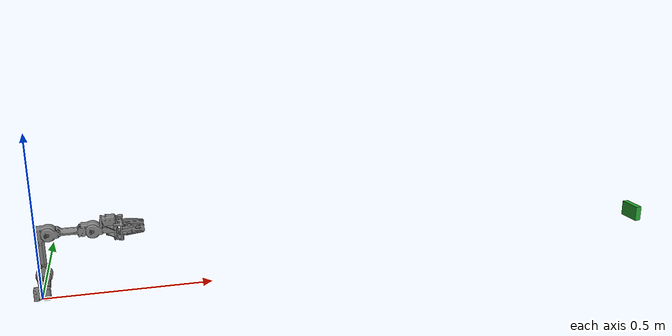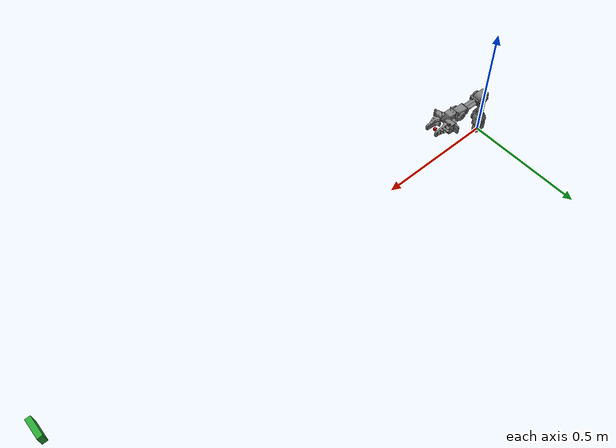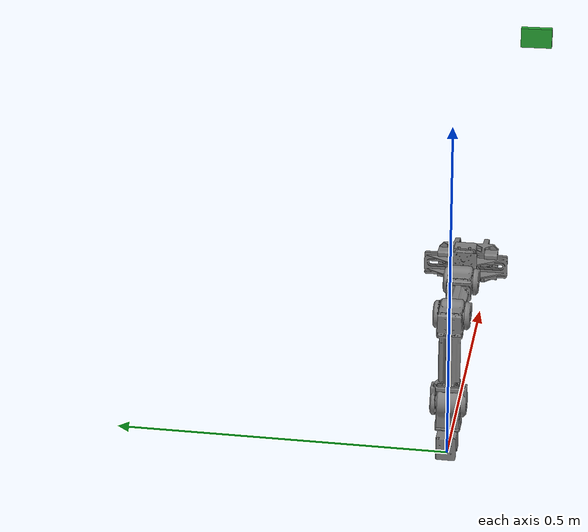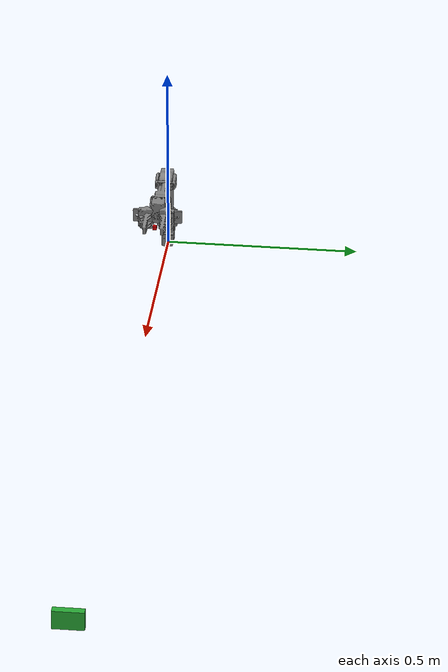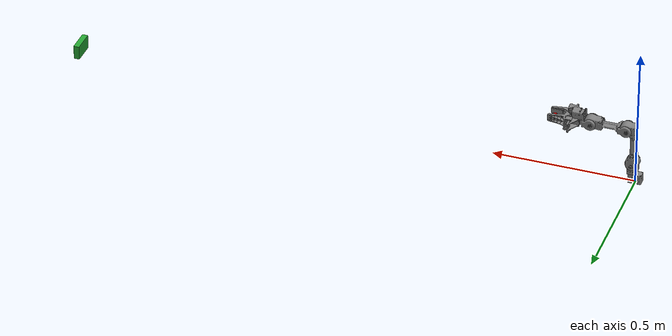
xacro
<?xml version="1.0" ?>
<robot xmlns:xacro="http://www.ros.org/wiki/xacro" name="open_manipulator">

  <xacro:include filename="$(find kair_algorithms)/urdf/camera.urdf.xacro"/>
    <material name="black">
      <color rgba="0.0 0.0 0.0 1.0"/>
    </material>
    <material name="white">
      <color rgba="1.0 1.0 1.0 1.0"/>
    </material>
    <material name="red">
      <color rgba="0.8 0.0 0.0 1.0"/>
    </material>
    <material name="blue">
      <color rgba="0.0 0.0 0.8 1.0"/>
    </material>
    <material name="green">
      <color rgba="0.0 0.8 0.0 1.0"/>
    </material>
    <material name="grey">
      <color rgba="0.5 0.5 0.5 1.0"/>
    </material>
    <material name="orange">
      <color rgba="1.0 0.423529411765 0.0392156862745 1.0"/>
    </material>
    <material name="brown">
      <color rgba="0.870588235294 0.811764705882 0.764705882353 1.0"/>
    </material>
    <!-- World -->
    <link name="world">
    </link>
    <!-- World fixed joint-->
    <joint name="world_fixed" type="fixed">
      <origin rpy="0 0 0" xyz="0 0 0"/>
      <parent link="world"/>
      <child link="link1"/>
    </joint>
    <!-- Link 1 -->
    <link name="link1">
      <visual>
        <origin rpy="0 0 0" xyz="0 0 0"/>
        <geometry>
          <mesh filename="package://open_manipulator_description/meshes/chain_link1.stl" scale="0.001 0.001 0.001"/>
        </geometry>
        <material name="grey"/>
      </visual>
      <collision>
        <origin rpy="0 0 0" xyz="0 0 0"/>
        <geometry>
          <mesh filename="package://open_manipulator_description/meshes/chain_link1.stl" scale="0.001 0.001 0.001"/>
        </geometry>
      </collision>
      <inertial>
        <origin xyz="3.0876154e-04 0.0000000e+00 -1.2176461e-04"/>
        <mass value="7.9119962e-02"/>
        <inertia ixx="1.2505234e-05" ixy="0.0" ixz="-1.7855208e-07" iyy="2.1898364e-05" iyz="0.0" izz="1.9267361e-05"/>
      </inertial>
    </link>
    <!-- Joint 1 -->
    <joint name="joint1" type="revolute">
      <parent link="link1"/>
      <child link="link2"/>
      <origin rpy="0 0 0" xyz="0.012 0.0 0.017"/>
      <axis xyz="0 0 1"/>
      <limit effort="1" lower="-2.82743338823" upper="2.82743338823" velocity="4.8"/>
    </joint>
    <!--  Link 2 -->
    <link name="link2">
      <visual>
        <origin rpy="0 0 0" xyz="0 0 0.019"/>
        <geometry>
          <mesh filename="package://open_manipulator_description/meshes/chain_link2.stl" scale="0.001 0.001 0.001"/>
        </geometry>
        <material name="grey"/>
      </visual>
      <collision>
        <origin rpy="0 0 0" xyz="0 0 0.019"/>
        <geometry>
          <mesh filename="package://open_manipulator_description/meshes/chain_link2.stl" scale="0.001 0.001 0.001"/>
        </geometry>
      </collision>
      <inertial>
        <origin xyz="-3.0184870e-04 5.4043684e-04 0.047433464"/>
        <mass value="9.8406837e-02"/>
        <inertia ixx="3.4543422e-05" ixy="-1.6031095e-08" ixz="-3.8375155e-07" iyy="3.2689329e-05" iyz="2.8511935e-08" izz="1.8850320e-05"/>
      </inertial>
    </link>
    <!--  Joint 2 -->
    <joint name="joint2" type="revolute">
      <parent link="link2"/>
      <child link="link3"/>
      <origin rpy="0 0 0" xyz="0.0 0.0 0.0595"/>
      <axis xyz="0 1 0"/>
      <limit effort="1" lower="-1.79070781255" upper="1.57079632679" velocity="4.8"/>
    </joint>
    <!--  Link 3 -->
    <link name="link3">
      <visual>
        <origin rpy="0 0 0" xyz="0 0 0"/>
        <geometry>
          <mesh filename="package://open_manipulator_description/meshes/chain_link3.stl" scale="0.001 0.001 0.001"/>
        </geometry>
        <material name="grey"/>
      </visual>
      <collision>
        <origin rpy="0 0 0" xyz="0 0 0"/>
        <geometry>
          <mesh filename="package://open_manipulator_description/meshes/chain_link3.stl" scale="0.001 0.001 0.001"/>
        </geometry>
      </collision>
      <inertial>
        <origin xyz="1.0308393e-02 3.7743363e-04 1.0170197e-01"/>
        <mass value="1.3850917e-01"/>
        <inertia ixx="3.3055381e-04" ixy="-9.7940978e-08" ixz="-3.8505711e-05" iyy="3.4290447e-04" iyz="-1.5717516e-06" izz="6.0346498e-05"/>
      </inertial>
    </link>
    <!--  Joint 3 -->
    <joint name="joint3" type="revolute">
      <parent link="link3"/>
      <child link="link4"/>
      <origin rpy="0 0 0" xyz="0.024 0 0.128"/>
      <axis xyz="0 1 0"/>
      <limit effort="1" lower="-0.942477796077" upper="1.38230076758" velocity="4.8"/>
    </joint>

    <!--  Link 4 -->
    <link name="link4">
      <visual>
        <origin rpy="0 0 0" xyz="0 0 0"/>
        <geometry>
          <mesh filename="package://open_manipulator_description/meshes/chain_link4.stl" scale="0.001 0.001 0.001"/>
        </geometry>
        <material name="grey"/>
      </visual>
      <collision>
        <origin rpy="0 0 0" xyz="0 0 0"/>
        <geometry>
          <mesh filename="package://open_manipulator_description/meshes/chain_link4.stl" scale="0.001 0.001 0.001"/>
        </geometry>
      </collision>
      <inertial>
        <origin xyz="9.0909590e-02 3.8929816e-04 2.2413279e-04"/>
        <mass value="1.3274562e-01"/>
        <inertia ixx="3.0654178e-05" ixy="-1.2764155e-06" ixz="-2.6874417e-07" iyy="2.4230292e-04" iyz="1.1559550e-08" izz="2.5155057e-04"/>
      </inertial>
    </link>
    <!--  Joint 4 -->
    <joint name="joint4" type="revolute">
      <parent link="link4"/>
      <child link="link5"/>
      <origin rpy="0 0 0" xyz="0.124 0.0 0.0"/>
      <axis xyz="0 1 0"/>
      <limit effort="1" lower="-1.79070781255" upper="2.04203522483" velocity="4.8"/>
    </joint>

    <!--  Link 5 -->
    <link name="link5">
      <visual>
        <origin rpy="0 0 0" xyz="0 0 0"/>
        <geometry>
          <mesh filename="package://open_manipulator_description/meshes/chain_link5.stl" scale="0.001 0.001 0.001"/>
        </geometry>
        <material name="grey"/>
      </visual>
      <collision>
        <origin rpy="0 0 0" xyz="0 0 0"/>
        <geometry>
          <mesh filename="package://open_manipulator_description/meshes/chain_link5.stl" scale="0.001 0.001 0.001"/>
        </geometry>
      </collision>
      <inertial>
        <origin xyz="4.4206755e-02 3.6839985e-07 8.9142216e-03"/>
        <mass value="1.4327573e-01"/>
        <inertia ixx="8.0870749e-05" ixy="0.0" ixz="-1.0157896e-06" iyy="7.5980465e-05" iyz="0.0" izz="9.3127351e-05"/>
      </inertial>
    </link>
    <!--  Gripper link -->
    <link name="gripper_link">
      <visual>
        <origin rpy="0 0 0" xyz="0.0 0.0 0"/>
        <geometry>
          <mesh filename="package://open_manipulator_description/meshes/chain_link_grip_l.stl" scale="0.001 0.001 0.001"/>
        </geometry>
        <material name="grey"/>
      </visual>
      <collision>
        <origin rpy="0 0 0" xyz="0.0 0.0 0"/>
        <geometry>
          <mesh filename="package://open_manipulator_description/meshes/chain_link_grip_l.stl" scale="0.001 0.001 0.001"/>
        </geometry>
      </collision>
      <inertial>
        <origin xyz="0 0 0"/>
        <mass value="0.017"/>
        <inertia ixx="1.0e-03" ixy="0.0" ixz="0.0" iyy="1.0e-03" iyz="0.0" izz="1.0e-03"/>
      </inertial>
    </link>
    <!--  Gripper joint -->
    <joint name="gripper" type="prismatic">
      <parent link="link5"/>
      <child link="gripper_link"/>
      <origin rpy="0 0 0" xyz="0.0817 0.021 0.0"/>
      <axis xyz="0 1 0"/>
      <limit effort="1" lower="-0.010" upper="0.019" velocity="4.8"/>
    </joint>

    <!--  Gripper link sub -->
    <link name="gripper_link_sub">
      <visual>
        <origin rpy="0 0 0" xyz="0.0 -0.0 0"/>
        <geometry>
          <mesh filename="package://open_manipulator_description/meshes/chain_link_grip_r.stl" scale="0.001 0.001 0.001"/>
        </geometry>
        <material name="grey"/>
      </visual>
      <collision>
        <origin rpy="0 0 0" xyz="0.0 -0.0 0"/>
        <geometry>
          <mesh filename="package://open_manipulator_description/meshes/chain_link_grip_r.stl" scale="0.001 0.001 0.001"/>
        </geometry>
      </collision>
      <inertial>
        <origin xyz="0 0 0"/>
        <mass value="0.017"/>
        <inertia ixx="1.0e-03" ixy="0.0" ixz="0.0" iyy="1.0e-03" iyz="0.0" izz="1.0e-03"/>
      </inertial>
    </link>
    <!--  Gripper joint sub -->
    <joint name="gripper_sub" type="prismatic">
      <parent link="link5"/>
      <child link="gripper_link_sub"/>
      <origin rpy="0 0 0" xyz="0.0817 -0.021 0"/>
      <axis xyz="0 -1 0"/>
      <limit effort="1" lower="-0.010" upper="0.019" velocity="4.8"/>
      <mimic joint="gripper" multiplier="1"/>
    </joint>

    <!-- end effector joint -->
    <joint name="end_effector_joint" type="fixed">
      <origin rpy="0 0 0" xyz="0.126 0.0 0.0"/>
      <parent link="link5"/>
      <child link="end_effector_link"/>
    </joint>
    <!-- end effector link -->
    <link name="end_effector_link">
      <visual>
        <origin rpy="0 0 0" xyz="0 0 0"/>
        <geometry>
          <box size="0.01 0.01 0.01"/>
        </geometry>
        <material name="red"/>
      </visual>
      <inertial>
        <origin rpy="0 0 0" xyz="0.0 0.0 0.0"/>
        <mass value="0.001"/>
        <inertia ixx="1.0e-06" ixy="0.0" ixz="0.0" iyy="1.0e-06" iyz="0.0" izz="1.0e-06"/>
      </inertial>
    </link>

    <!--Camera link and plugin-->
    <xacro:camera_sensor xyz="2 0 ${0.04 + 0.02 + 0.04}"
                  rpy="0 0 0"
                  parent="world">
    </xacro:camera_sensor>

  </robot>

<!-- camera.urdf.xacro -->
<robot xmlns:xacro="http://www.ros.org/wiki/xacro" name="camera">

    <xacro:property name="pi" value="3.1415926535897931"/>

    <xacro:macro name="camera_sensor" params="xyz rpy parent">
        <joint name="camera_sensor_joint" type="fixed">
            <axis xyz="0 1 0" />
            <origin xyz="${xyz}" rpy="${rpy}"/>
            <parent link="${parent}"/>
            <child link="camera_link"/>
        </joint>

        <link name="camera_link">
            <collision>
                <origin xyz="0 0 0" rpy="0 0 0"/>
                <geometry>
                    <box size="0.02 0.08 0.05"/>
                </geometry>
            </collision>
            <visual>
                <origin xyz="0 0 0" rpy="0 0 0"/>
                <geometry>
                    <box size="0.02 0.08 0.05"/>
                </geometry>
                <material name="iRobot/Green"/>
            </visual>
            <inertial>
                <mass value="0.0001" />
                <origin xyz="0 0 0" rpy="0 0 ${pi}"/>
                <inertia ixx="0.0000001" ixy="0" ixz="0" iyy="0.0000001" iyz="0" izz="0.0000001" />
            </inertial>
        </link>

        <gazebo reference="camera_link">
            <sensor type="camera" name="camera">
                <update_rate>30.0</update_rate>
                <camera name="head">
                    <horizontal_fov>1.3962634</horizontal_fov>
                    <image>
                        <width>800</width>
                        <height>600</height>
                        <format>R8G8B8</format>
                    </image>
                    <clip>
                        <near>0.02</near>
                        <far>300</far>
                    </clip>
                    <noise>
                        <type>gaussian</type>
                        <mean>0.0</mean>
                        <stddev>0.007</stddev>
                    </noise>
                </camera>
                <plugin name="camera_controller" filename="libgazebo_ros_camera.so">
                    <alwaysOn>true</alwaysOn>
                    <updateRate>0.0</updateRate>
                    <cameraName>camera</cameraName>
                    <imageTopicName>image_raw</imageTopicName>
                    <cameraInfoTopicName>camera_info</cameraInfoTopicName>
                    <frameName>camera_link</frameName>
                    <hackBaseline>0.07</hackBaseline>
                    <distortionK1>0.0</distortionK1>
                    <distortionK2>0.0</distortionK2>
                    <distortionK3>0.0</distortionK3>
                    <distortionT1>0.0</distortionT1>
                    <distortionT2>0.0</distortionT2>
                </plugin>
            </sensor>
    </gazebo>

    </xacro:macro>

</robot>
